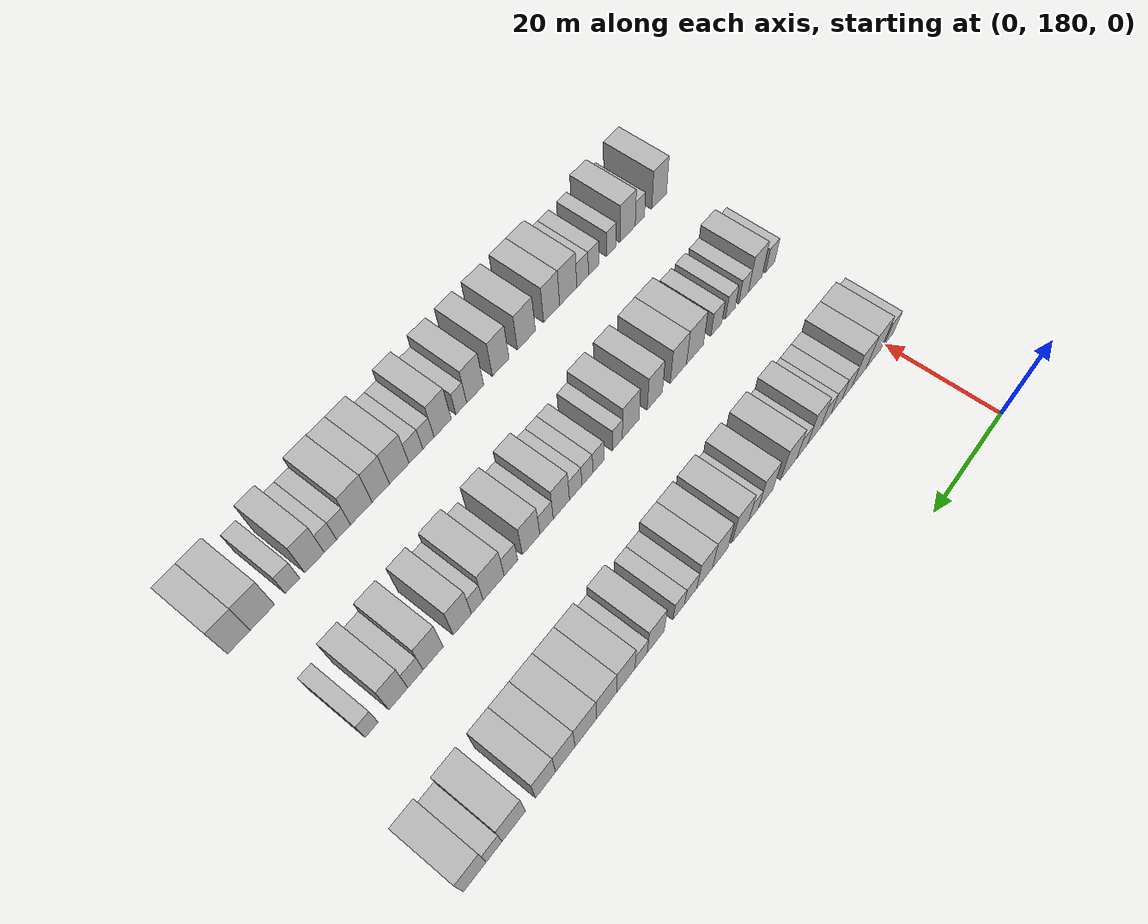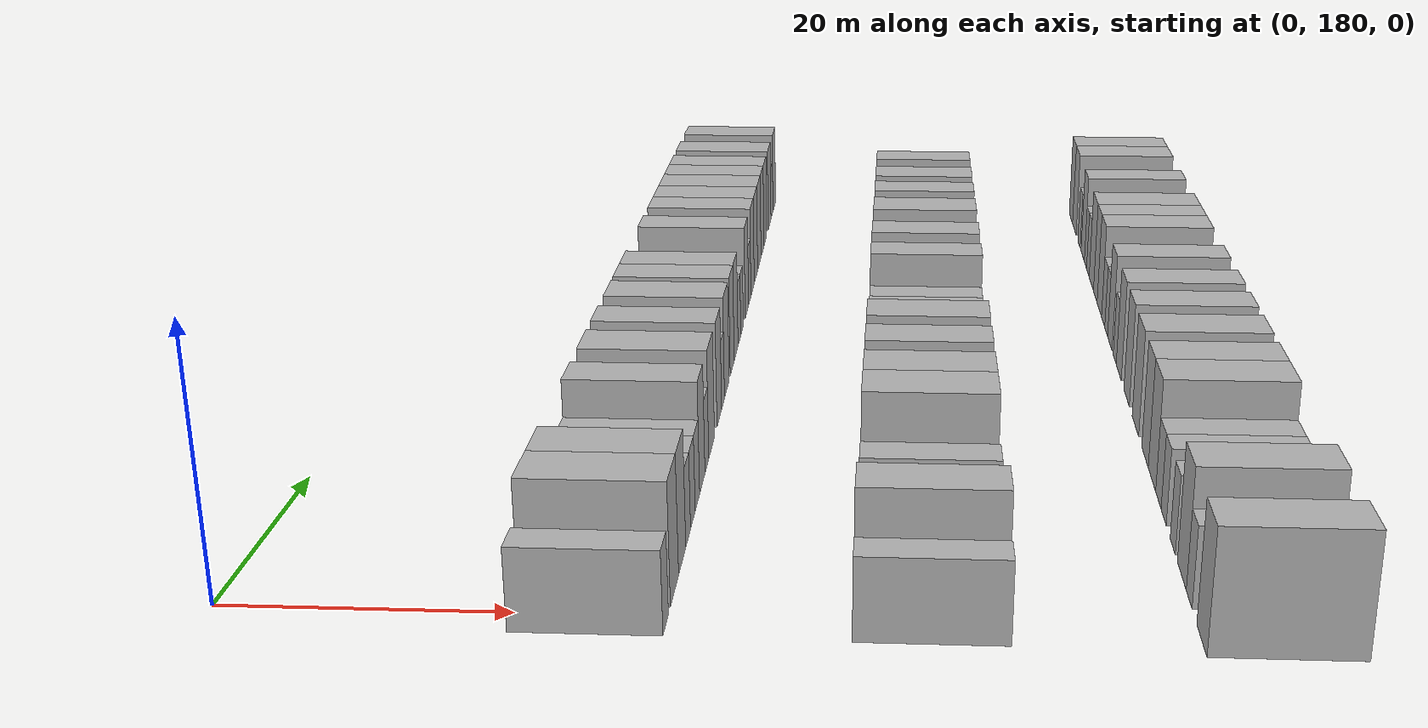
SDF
<sdf version="1.6">
 <world name="default">
  <model name="building_132">
   <static>1</static>
   <pose>25.0000 178.8875 0 0.000000 0.000000 0.000000</pose>
   <link name="link">
    <pose>0 0 3.00 0 0 0</pose>
    <collision name="collision"><geometry><box><size>10.0000 2.7104 6.0000</size></box></geometry></collision>
    <visual name="visual">
     <cast_shadows>0</cast_shadows>
     <geometry><box><size>10.0000 2.7104 6.0000</size></box></geometry>
     <material>
      <script>
       <uri>model://HANNAS_wall/materials/scripts</uri>
       <uri>model://HANNAS_wall/materials/textures</uri>
       <name>vrc/HANNAS_wall</name>
      </script>
     </material>
    </visual>
   </link>
  </model>
  <model name="building_133">
   <static>1</static>
   <pose>25.0000 183.4317 0 0.000000 0.000000 0.000000</pose>
   <link name="link">
    <pose>0 0 4.50 0 0 0</pose>
    <collision name="collision"><geometry><box><size>10.0000 4.3781 9.0000</size></box></geometry></collision>
    <visual name="visual">
     <cast_shadows>0</cast_shadows>
     <geometry><box><size>10.0000 4.3781 9.0000</size></box></geometry>
     <material>
      <script>
       <uri>model://HANNAS_wall/materials/scripts</uri>
       <uri>model://HANNAS_wall/materials/textures</uri>
       <name>vrc/HANNAS_wall</name>
      </script>
     </material>
    </visual>
   </link>
  </model>
  <model name="building_134">
   <static>1</static>
   <pose>25.0000 187.6681 0 0.000000 0.000000 0.000000</pose>
   <link name="link">
    <pose>0 0 4.50 0 0 0</pose>
    <collision name="collision"><geometry><box><size>10.0000 4.0947 9.0000</size></box></geometry></collision>
    <visual name="visual">
     <cast_shadows>0</cast_shadows>
     <geometry><box><size>10.0000 4.0947 9.0000</size></box></geometry>
     <material>
      <script>
       <uri>model://HANNAS_wall/materials/scripts</uri>
       <uri>model://HANNAS_wall/materials/textures</uri>
       <name>vrc/HANNAS_wall</name>
      </script>
     </material>
    </visual>
   </link>
  </model>
  <model name="building_135">
   <static>1</static>
   <pose>25.0000 191.1434 0 0.000000 0.000000 0.000000</pose>
   <link name="link">
    <pose>0 0 3.00 0 0 0</pose>
    <collision name="collision"><geometry><box><size>10.0000 2.8558 6.0000</size></box></geometry></collision>
    <visual name="visual">
     <cast_shadows>0</cast_shadows>
     <geometry><box><size>10.0000 2.8558 6.0000</size></box></geometry>
     <material>
      <script>
       <uri>model://HANNAS_wall/materials/scripts</uri>
       <uri>model://HANNAS_wall/materials/textures</uri>
       <name>vrc/HANNAS_wall</name>
      </script>
     </material>
    </visual>
   </link>
  </model>
  <model name="building_136">
   <static>1</static>
   <pose>25.0000 194.0284 0 0.000000 0.000000 0.000000</pose>
   <link name="link">
    <pose>0 0 3.00 0 0 0</pose>
    <collision name="collision"><geometry><box><size>10.0000 2.9141 6.0000</size></box></geometry></collision>
    <visual name="visual">
     <cast_shadows>0</cast_shadows>
     <geometry><box><size>10.0000 2.9141 6.0000</size></box></geometry>
     <material>
      <script>
       <uri>model://HANNAS_wall/materials/scripts</uri>
       <uri>model://HANNAS_wall/materials/textures</uri>
       <name>vrc/HANNAS_wall</name>
      </script>
     </material>
    </visual>
   </link>
  </model>
  <model name="building_137">
   <static>1</static>
   <pose>25.0000 196.9441 0 0.000000 0.000000 0.000000</pose>
   <link name="link">
    <pose>0 0 3.00 0 0 0</pose>
    <collision name="collision"><geometry><box><size>10.0000 2.9173 6.0000</size></box></geometry></collision>
    <visual name="visual">
     <cast_shadows>0</cast_shadows>
     <geometry><box><size>10.0000 2.9173 6.0000</size></box></geometry>
     <material>
      <script>
       <uri>model://HANNAS_wall/materials/scripts</uri>
       <uri>model://HANNAS_wall/materials/textures</uri>
       <name>vrc/HANNAS_wall</name>
      </script>
     </material>
    </visual>
   </link>
  </model>
  <model name="building_138">
   <static>1</static>
   <pose>25.0000 200.2274 0 0.000000 0.000000 0.000000</pose>
   <link name="link">
    <pose>0 0 4.50 0 0 0</pose>
    <collision name="collision"><geometry><box><size>10.0000 3.6493 9.0000</size></box></geometry></collision>
    <visual name="visual">
     <cast_shadows>0</cast_shadows>
     <geometry><box><size>10.0000 3.6493 9.0000</size></box></geometry>
     <material>
      <script>
       <uri>model://HANNAS_wall/materials/scripts</uri>
       <uri>model://HANNAS_wall/materials/textures</uri>
       <name>vrc/HANNAS_wall</name>
      </script>
     </material>
    </visual>
   </link>
  </model>
  <model name="building_139">
   <static>1</static>
   <pose>25.0000 203.4334 0 0.000000 0.000000 0.000000</pose>
   <link name="link">
    <pose>0 0 3.00 0 0 0</pose>
    <collision name="collision"><geometry><box><size>10.0000 2.7627 6.0000</size></box></geometry></collision>
    <visual name="visual">
     <cast_shadows>0</cast_shadows>
     <geometry><box><size>10.0000 2.7627 6.0000</size></box></geometry>
     <material>
      <script>
       <uri>model://HANNAS_wall/materials/scripts</uri>
       <uri>model://HANNAS_wall/materials/textures</uri>
       <name>vrc/HANNAS_wall</name>
      </script>
     </material>
    </visual>
   </link>
  </model>
  <model name="building_140">
   <static>1</static>
   <pose>25.0000 206.9406 0 0.000000 0.000000 0.000000</pose>
   <link name="link">
    <pose>0 0 4.50 0 0 0</pose>
    <collision name="collision"><geometry><box><size>10.0000 4.2517 9.0000</size></box></geometry></collision>
    <visual name="visual">
     <cast_shadows>0</cast_shadows>
     <geometry><box><size>10.0000 4.2517 9.0000</size></box></geometry>
     <material>
      <script>
       <uri>model://HANNAS_wall/materials/scripts</uri>
       <uri>model://HANNAS_wall/materials/textures</uri>
       <name>vrc/HANNAS_wall</name>
      </script>
     </material>
    </visual>
   </link>
  </model>
  <model name="building_141">
   <static>1</static>
   <pose>25.0000 212.9448 0 0.000000 0.000000 0.000000</pose>
   <link name="link">
    <pose>0 0 4.50 0 0 0</pose>
    <collision name="collision"><geometry><box><size>10.0000 3.7566 9.0000</size></box></geometry></collision>
    <visual name="visual">
     <cast_shadows>0</cast_shadows>
     <geometry><box><size>10.0000 3.7566 9.0000</size></box></geometry>
     <material>
      <script>
       <uri>model://HANNAS_wall/materials/scripts</uri>
       <uri>model://HANNAS_wall/materials/textures</uri>
       <name>vrc/HANNAS_wall</name>
      </script>
     </material>
    </visual>
   </link>
  </model>
  <model name="building_142">
   <static>1</static>
   <pose>25.0000 216.0454 0 0.000000 0.000000 0.000000</pose>
   <link name="link">
    <pose>0 0 3.00 0 0 0</pose>
    <collision name="collision"><geometry><box><size>10.0000 2.4447 6.0000</size></box></geometry></collision>
    <visual name="visual">
     <cast_shadows>0</cast_shadows>
     <geometry><box><size>10.0000 2.4447 6.0000</size></box></geometry>
     <material>
      <script>
       <uri>model://HANNAS_wall/materials/scripts</uri>
       <uri>model://HANNAS_wall/materials/textures</uri>
       <name>vrc/HANNAS_wall</name>
      </script>
     </material>
    </visual>
   </link>
  </model>
  <model name="building_143">
   <static>1</static>
   <pose>25.0000 219.3260 0 0.000000 0.000000 0.000000</pose>
   <link name="link">
    <pose>0 0 4.50 0 0 0</pose>
    <collision name="collision"><geometry><box><size>10.0000 4.1165 9.0000</size></box></geometry></collision>
    <visual name="visual">
     <cast_shadows>0</cast_shadows>
     <geometry><box><size>10.0000 4.1165 9.0000</size></box></geometry>
     <material>
      <script>
       <uri>model://HANNAS_wall/materials/scripts</uri>
       <uri>model://HANNAS_wall/materials/textures</uri>
       <name>vrc/HANNAS_wall</name>
      </script>
     </material>
    </visual>
   </link>
  </model>
  <model name="building_144">
   <static>1</static>
   <pose>25.0000 224.2451 0 0.000000 0.000000 0.000000</pose>
   <link name="link">
    <pose>0 0 4.50 0 0 0</pose>
    <collision name="collision"><geometry><box><size>10.0000 3.7218 9.0000</size></box></geometry></collision>
    <visual name="visual">
     <cast_shadows>0</cast_shadows>
     <geometry><box><size>10.0000 3.7218 9.0000</size></box></geometry>
     <material>
      <script>
       <uri>model://HANNAS_wall/materials/scripts</uri>
       <uri>model://HANNAS_wall/materials/textures</uri>
       <name>vrc/HANNAS_wall</name>
      </script>
     </material>
    </visual>
   </link>
  </model>
  <model name="building_145">
   <static>1</static>
   <pose>25.0000 227.9813 0 0.000000 0.000000 0.000000</pose>
   <link name="link">
    <pose>0 0 4.50 0 0 0</pose>
    <collision name="collision"><geometry><box><size>10.0000 3.7504 9.0000</size></box></geometry></collision>
    <visual name="visual">
     <cast_shadows>0</cast_shadows>
     <geometry><box><size>10.0000 3.7504 9.0000</size></box></geometry>
     <material>
      <script>
       <uri>model://HANNAS_wall/materials/scripts</uri>
       <uri>model://HANNAS_wall/materials/textures</uri>
       <name>vrc/HANNAS_wall</name>
      </script>
     </material>
    </visual>
   </link>
  </model>
  <model name="building_146">
   <static>1</static>
   <pose>25.0000 231.2785 0 0.000000 0.000000 0.000000</pose>
   <link name="link">
    <pose>0 0 3.00 0 0 0</pose>
    <collision name="collision"><geometry><box><size>10.0000 2.8440 6.0000</size></box></geometry></collision>
    <visual name="visual">
     <cast_shadows>0</cast_shadows>
     <geometry><box><size>10.0000 2.8440 6.0000</size></box></geometry>
     <material>
      <script>
       <uri>model://HANNAS_wall/materials/scripts</uri>
       <uri>model://HANNAS_wall/materials/textures</uri>
       <name>vrc/HANNAS_wall</name>
      </script>
     </material>
    </visual>
   </link>
  </model>
  <model name="building_147">
   <static>1</static>
   <pose>25.0000 234.0198 0 0.000000 0.000000 0.000000</pose>
   <link name="link">
    <pose>0 0 3.00 0 0 0</pose>
    <collision name="collision"><geometry><box><size>10.0000 2.6386 6.0000</size></box></geometry></collision>
    <visual name="visual">
     <cast_shadows>0</cast_shadows>
     <geometry><box><size>10.0000 2.6386 6.0000</size></box></geometry>
     <material>
      <script>
       <uri>model://HANNAS_wall/materials/scripts</uri>
       <uri>model://HANNAS_wall/materials/textures</uri>
       <name>vrc/HANNAS_wall</name>
      </script>
     </material>
    </visual>
   </link>
  </model>
  <model name="building_148">
   <static>1</static>
   <pose>25.0000 239.2450 0 0.000000 0.000000 0.000000</pose>
   <link name="link">
    <pose>0 0 4.50 0 0 0</pose>
    <collision name="collision"><geometry><box><size>10.0000 3.8118 9.0000</size></box></geometry></collision>
    <visual name="visual">
     <cast_shadows>0</cast_shadows>
     <geometry><box><size>10.0000 3.8118 9.0000</size></box></geometry>
     <material>
      <script>
       <uri>model://HANNAS_wall/materials/scripts</uri>
       <uri>model://HANNAS_wall/materials/textures</uri>
       <name>vrc/HANNAS_wall</name>
      </script>
     </material>
    </visual>
   </link>
  </model>
  <model name="building_149">
   <static>1</static>
   <pose>25.0000 242.5101 0 0.000000 0.000000 0.000000</pose>
   <link name="link">
    <pose>0 0 3.00 0 0 0</pose>
    <collision name="collision"><geometry><box><size>10.0000 2.7183 6.0000</size></box></geometry></collision>
    <visual name="visual">
     <cast_shadows>0</cast_shadows>
     <geometry><box><size>10.0000 2.7183 6.0000</size></box></geometry>
     <material>
      <script>
       <uri>model://HANNAS_wall/materials/scripts</uri>
       <uri>model://HANNAS_wall/materials/textures</uri>
       <name>vrc/HANNAS_wall</name>
      </script>
     </material>
    </visual>
   </link>
  </model>
  <model name="building_150">
   <static>1</static>
   <pose>25.0000 245.8406 0 0.000000 0.000000 0.000000</pose>
   <link name="link">
    <pose>0 0 4.50 0 0 0</pose>
    <collision name="collision"><geometry><box><size>10.0000 3.9428 9.0000</size></box></geometry></collision>
    <visual name="visual">
     <cast_shadows>0</cast_shadows>
     <geometry><box><size>10.0000 3.9428 9.0000</size></box></geometry>
     <material>
      <script>
       <uri>model://HANNAS_wall/materials/scripts</uri>
       <uri>model://HANNAS_wall/materials/textures</uri>
       <name>vrc/HANNAS_wall</name>
      </script>
     </material>
    </visual>
   </link>
  </model>
  <model name="building_151">
   <static>1</static>
   <pose>25.0000 249.9396 0 0.000000 0.000000 0.000000</pose>
   <link name="link">
    <pose>0 0 4.50 0 0 0</pose>
    <collision name="collision"><geometry><box><size>10.0000 4.2550 9.0000</size></box></geometry></collision>
    <visual name="visual">
     <cast_shadows>0</cast_shadows>
     <geometry><box><size>10.0000 4.2550 9.0000</size></box></geometry>
     <material>
      <script>
       <uri>model://HANNAS_wall/materials/scripts</uri>
       <uri>model://HANNAS_wall/materials/textures</uri>
       <name>vrc/HANNAS_wall</name>
      </script>
     </material>
    </visual>
   </link>
  </model>
  <model name="building_152">
   <static>1</static>
   <pose>25.0000 254.2972 0 0.000000 0.000000 0.000000</pose>
   <link name="link">
    <pose>0 0 4.50 0 0 0</pose>
    <collision name="collision"><geometry><box><size>10.0000 4.4603 9.0000</size></box></geometry></collision>
    <visual name="visual">
     <cast_shadows>0</cast_shadows>
     <geometry><box><size>10.0000 4.4603 9.0000</size></box></geometry>
     <material>
      <script>
       <uri>model://HANNAS_wall/materials/scripts</uri>
       <uri>model://HANNAS_wall/materials/textures</uri>
       <name>vrc/HANNAS_wall</name>
      </script>
     </material>
    </visual>
   </link>
  </model>
  <model name="building_153">
   <static>1</static>
   <pose>25.0000 258.5037 0 0.000000 0.000000 0.000000</pose>
   <link name="link">
    <pose>0 0 4.50 0 0 0</pose>
    <collision name="collision"><geometry><box><size>10.0000 3.9527 9.0000</size></box></geometry></collision>
    <visual name="visual">
     <cast_shadows>0</cast_shadows>
     <geometry><box><size>10.0000 3.9527 9.0000</size></box></geometry>
     <material>
      <script>
       <uri>model://HANNAS_wall/materials/scripts</uri>
       <uri>model://HANNAS_wall/materials/textures</uri>
       <name>vrc/HANNAS_wall</name>
      </script>
     </material>
    </visual>
   </link>
  </model>
  <model name="building_154">
   <static>1</static>
   <pose>25.0000 262.4560 0 0.000000 0.000000 0.000000</pose>
   <link name="link">
    <pose>0 0 4.50 0 0 0</pose>
    <collision name="collision"><geometry><box><size>10.0000 3.9519 9.0000</size></box></geometry></collision>
    <visual name="visual">
     <cast_shadows>0</cast_shadows>
     <geometry><box><size>10.0000 3.9519 9.0000</size></box></geometry>
     <material>
      <script>
       <uri>model://HANNAS_wall/materials/scripts</uri>
       <uri>model://HANNAS_wall/materials/textures</uri>
       <name>vrc/HANNAS_wall</name>
      </script>
     </material>
    </visual>
   </link>
  </model>
  <model name="building_155">
   <static>1</static>
   <pose>25.0000 268.6586 0 0.000000 0.000000 0.000000</pose>
   <link name="link">
    <pose>0 0 4.50 0 0 0</pose>
    <collision name="collision"><geometry><box><size>10.0000 4.4533 9.0000</size></box></geometry></collision>
    <visual name="visual">
     <cast_shadows>0</cast_shadows>
     <geometry><box><size>10.0000 4.4533 9.0000</size></box></geometry>
     <material>
      <script>
       <uri>model://HANNAS_wall/materials/scripts</uri>
       <uri>model://HANNAS_wall/materials/textures</uri>
       <name>vrc/HANNAS_wall</name>
      </script>
     </material>
    </visual>
   </link>
  </model>
  <model name="building_156">
   <static>1</static>
   <pose>25.0000 272.3724 0 0.000000 0.000000 0.000000</pose>
   <link name="link">
    <pose>0 0 3.00 0 0 0</pose>
    <collision name="collision"><geometry><box><size>10.0000 2.9742 6.0000</size></box></geometry></collision>
    <visual name="visual">
     <cast_shadows>0</cast_shadows>
     <geometry><box><size>10.0000 2.9742 6.0000</size></box></geometry>
     <material>
      <script>
       <uri>model://HANNAS_wall/materials/scripts</uri>
       <uri>model://HANNAS_wall/materials/textures</uri>
       <name>vrc/HANNAS_wall</name>
      </script>
     </material>
    </visual>
   </link>
  </model>
  <model name="building_157">
   <static>1</static>
   <pose>25.0000 275.9692 0 0.000000 0.000000 0.000000</pose>
   <link name="link">
    <pose>0 0 4.50 0 0 0</pose>
    <collision name="collision"><geometry><box><size>10.0000 4.2195 9.0000</size></box></geometry></collision>
    <visual name="visual">
     <cast_shadows>0</cast_shadows>
     <geometry><box><size>10.0000 4.2195 9.0000</size></box></geometry>
     <material>
      <script>
       <uri>model://HANNAS_wall/materials/scripts</uri>
       <uri>model://HANNAS_wall/materials/textures</uri>
       <name>vrc/HANNAS_wall</name>
      </script>
     </material>
    </visual>
   </link>
  </model>
  <model name="building_324">
   <static>1</static>
   <pose>47.0000 178.6921 0 0.000000 0.000000 0.000000</pose>
   <link name="link">
    <pose>0 0 3.00 0 0 0</pose>
    <collision name="collision"><geometry><box><size>10.0000 2.6693 6.0000</size></box></geometry></collision>
    <visual name="visual">
     <cast_shadows>0</cast_shadows>
     <geometry><box><size>10.0000 2.6693 6.0000</size></box></geometry>
     <material>
      <script>
       <uri>model://HANNAS_wall/materials/scripts</uri>
       <uri>model://HANNAS_wall/materials/textures</uri>
       <name>vrc/HANNAS_wall</name>
      </script>
     </material>
    </visual>
   </link>
  </model>
  <model name="building_325">
   <static>1</static>
   <pose>47.0000 182.9508 0 0.000000 0.000000 0.000000</pose>
   <link name="link">
    <pose>0 0 4.50 0 0 0</pose>
    <collision name="collision"><geometry><box><size>10.0000 3.8480 9.0000</size></box></geometry></collision>
    <visual name="visual">
     <cast_shadows>0</cast_shadows>
     <geometry><box><size>10.0000 3.8480 9.0000</size></box></geometry>
     <material>
      <script>
       <uri>model://HANNAS_wall/materials/scripts</uri>
       <uri>model://HANNAS_wall/materials/textures</uri>
       <name>vrc/HANNAS_wall</name>
      </script>
     </material>
    </visual>
   </link>
  </model>
  <model name="building_326">
   <static>1</static>
   <pose>47.0000 186.2127 0 0.000000 0.000000 0.000000</pose>
   <link name="link">
    <pose>0 0 3.00 0 0 0</pose>
    <collision name="collision"><geometry><box><size>10.0000 2.6759 6.0000</size></box></geometry></collision>
    <visual name="visual">
     <cast_shadows>0</cast_shadows>
     <geometry><box><size>10.0000 2.6759 6.0000</size></box></geometry>
     <material>
      <script>
       <uri>model://HANNAS_wall/materials/scripts</uri>
       <uri>model://HANNAS_wall/materials/textures</uri>
       <name>vrc/HANNAS_wall</name>
      </script>
     </material>
    </visual>
   </link>
  </model>
  <model name="building_327">
   <static>1</static>
   <pose>47.0000 189.8908 0 0.000000 0.000000 0.000000</pose>
   <link name="link">
    <pose>0 0 3.00 0 0 0</pose>
    <collision name="collision"><geometry><box><size>10.0000 2.6802 6.0000</size></box></geometry></collision>
    <visual name="visual">
     <cast_shadows>0</cast_shadows>
     <geometry><box><size>10.0000 2.6802 6.0000</size></box></geometry>
     <material>
      <script>
       <uri>model://HANNAS_wall/materials/scripts</uri>
       <uri>model://HANNAS_wall/materials/textures</uri>
       <name>vrc/HANNAS_wall</name>
      </script>
     </material>
    </visual>
   </link>
  </model>
  <model name="building_328">
   <static>1</static>
   <pose>47.0000 193.6900 0 0.000000 0.000000 0.000000</pose>
   <link name="link">
    <pose>0 0 3.00 0 0 0</pose>
    <collision name="collision"><geometry><box><size>10.0000 2.9183 6.0000</size></box></geometry></collision>
    <visual name="visual">
     <cast_shadows>0</cast_shadows>
     <geometry><box><size>10.0000 2.9183 6.0000</size></box></geometry>
     <material>
      <script>
       <uri>model://HANNAS_wall/materials/scripts</uri>
       <uri>model://HANNAS_wall/materials/textures</uri>
       <name>vrc/HANNAS_wall</name>
      </script>
     </material>
    </visual>
   </link>
  </model>
  <model name="building_329">
   <static>1</static>
   <pose>47.0000 199.3684 0 0.000000 0.000000 0.000000</pose>
   <link name="link">
    <pose>0 0 4.50 0 0 0</pose>
    <collision name="collision"><geometry><box><size>10.0000 4.4385 9.0000</size></box></geometry></collision>
    <visual name="visual">
     <cast_shadows>0</cast_shadows>
     <geometry><box><size>10.0000 4.4385 9.0000</size></box></geometry>
     <material>
      <script>
       <uri>model://HANNAS_wall/materials/scripts</uri>
       <uri>model://HANNAS_wall/materials/textures</uri>
       <name>vrc/HANNAS_wall</name>
      </script>
     </material>
    </visual>
   </link>
  </model>
  <model name="building_330">
   <static>1</static>
   <pose>47.0000 203.6775 0 0.000000 0.000000 0.000000</pose>
   <link name="link">
    <pose>0 0 4.50 0 0 0</pose>
    <collision name="collision"><geometry><box><size>10.0000 4.1798 9.0000</size></box></geometry></collision>
    <visual name="visual">
     <cast_shadows>0</cast_shadows>
     <geometry><box><size>10.0000 4.1798 9.0000</size></box></geometry>
     <material>
      <script>
       <uri>model://HANNAS_wall/materials/scripts</uri>
       <uri>model://HANNAS_wall/materials/textures</uri>
       <name>vrc/HANNAS_wall</name>
      </script>
     </material>
    </visual>
   </link>
  </model>
  <model name="building_331">
   <static>1</static>
   <pose>47.0000 209.6791 0 0.000000 0.000000 0.000000</pose>
   <link name="link">
    <pose>0 0 4.50 0 0 0</pose>
    <collision name="collision"><geometry><box><size>10.0000 3.8232 9.0000</size></box></geometry></collision>
    <visual name="visual">
     <cast_shadows>0</cast_shadows>
     <geometry><box><size>10.0000 3.8232 9.0000</size></box></geometry>
     <material>
      <script>
       <uri>model://HANNAS_wall/materials/scripts</uri>
       <uri>model://HANNAS_wall/materials/textures</uri>
       <name>vrc/HANNAS_wall</name>
      </script>
     </material>
    </visual>
   </link>
  </model>
  <model name="building_332">
   <static>1</static>
   <pose>47.0000 215.6368 0 0.000000 0.000000 0.000000</pose>
   <link name="link">
    <pose>0 0 4.50 0 0 0</pose>
    <collision name="collision"><geometry><box><size>10.0000 4.0922 9.0000</size></box></geometry></collision>
    <visual name="visual">
     <cast_shadows>0</cast_shadows>
     <geometry><box><size>10.0000 4.0922 9.0000</size></box></geometry>
     <material>
      <script>
       <uri>model://HANNAS_wall/materials/scripts</uri>
       <uri>model://HANNAS_wall/materials/textures</uri>
       <name>vrc/HANNAS_wall</name>
      </script>
     </material>
    </visual>
   </link>
  </model>
  <model name="building_333">
   <static>1</static>
   <pose>47.0000 218.8910 0 0.000000 0.000000 0.000000</pose>
   <link name="link">
    <pose>0 0 3.00 0 0 0</pose>
    <collision name="collision"><geometry><box><size>10.0000 2.4162 6.0000</size></box></geometry></collision>
    <visual name="visual">
     <cast_shadows>0</cast_shadows>
     <geometry><box><size>10.0000 2.4162 6.0000</size></box></geometry>
     <material>
      <script>
       <uri>model://HANNAS_wall/materials/scripts</uri>
       <uri>model://HANNAS_wall/materials/textures</uri>
       <name>vrc/HANNAS_wall</name>
      </script>
     </material>
    </visual>
   </link>
  </model>
  <model name="building_334">
   <static>1</static>
   <pose>47.0000 223.3884 0 0.000000 0.000000 0.000000</pose>
   <link name="link">
    <pose>0 0 3.00 0 0 0</pose>
    <collision name="collision"><geometry><box><size>10.0000 2.5786 6.0000</size></box></geometry></collision>
    <visual name="visual">
     <cast_shadows>0</cast_shadows>
     <geometry><box><size>10.0000 2.5786 6.0000</size></box></geometry>
     <material>
      <script>
       <uri>model://HANNAS_wall/materials/scripts</uri>
       <uri>model://HANNAS_wall/materials/textures</uri>
       <name>vrc/HANNAS_wall</name>
      </script>
     </material>
    </visual>
   </link>
  </model>
  <model name="building_335">
   <static>1</static>
   <pose>47.0000 225.9514 0 0.000000 0.000000 0.000000</pose>
   <link name="link">
    <pose>0 0 3.00 0 0 0</pose>
    <collision name="collision"><geometry><box><size>10.0000 2.5474 6.0000</size></box></geometry></collision>
    <visual name="visual">
     <cast_shadows>0</cast_shadows>
     <geometry><box><size>10.0000 2.5474 6.0000</size></box></geometry>
     <material>
      <script>
       <uri>model://HANNAS_wall/materials/scripts</uri>
       <uri>model://HANNAS_wall/materials/textures</uri>
       <name>vrc/HANNAS_wall</name>
      </script>
     </material>
    </visual>
   </link>
  </model>
  <model name="building_336">
   <static>1</static>
   <pose>47.0000 228.6467 0 0.000000 0.000000 0.000000</pose>
   <link name="link">
    <pose>0 0 3.00 0 0 0</pose>
    <collision name="collision"><geometry><box><size>10.0000 2.8433 6.0000</size></box></geometry></collision>
    <visual name="visual">
     <cast_shadows>0</cast_shadows>
     <geometry><box><size>10.0000 2.8433 6.0000</size></box></geometry>
     <material>
      <script>
       <uri>model://HANNAS_wall/materials/scripts</uri>
       <uri>model://HANNAS_wall/materials/textures</uri>
       <name>vrc/HANNAS_wall</name>
      </script>
     </material>
    </visual>
   </link>
  </model>
  <model name="building_337">
   <static>1</static>
   <pose>47.0000 231.8906 0 0.000000 0.000000 0.000000</pose>
   <link name="link">
    <pose>0 0 4.50 0 0 0</pose>
    <collision name="collision"><geometry><box><size>10.0000 3.6445 9.0000</size></box></geometry></collision>
    <visual name="visual">
     <cast_shadows>0</cast_shadows>
     <geometry><box><size>10.0000 3.6445 9.0000</size></box></geometry>
     <material>
      <script>
       <uri>model://HANNAS_wall/materials/scripts</uri>
       <uri>model://HANNAS_wall/materials/textures</uri>
       <name>vrc/HANNAS_wall</name>
      </script>
     </material>
    </visual>
   </link>
  </model>
  <model name="building_338">
   <static>1</static>
   <pose>47.0000 235.2000 0 0.000000 0.000000 0.000000</pose>
   <link name="link">
    <pose>0 0 3.00 0 0 0</pose>
    <collision name="collision"><geometry><box><size>10.0000 2.9742 6.0000</size></box></geometry></collision>
    <visual name="visual">
     <cast_shadows>0</cast_shadows>
     <geometry><box><size>10.0000 2.9742 6.0000</size></box></geometry>
     <material>
      <script>
       <uri>model://HANNAS_wall/materials/scripts</uri>
       <uri>model://HANNAS_wall/materials/textures</uri>
       <name>vrc/HANNAS_wall</name>
      </script>
     </material>
    </visual>
   </link>
  </model>
  <model name="building_339">
   <static>1</static>
   <pose>47.0000 238.6045 0 0.000000 0.000000 0.000000</pose>
   <link name="link">
    <pose>0 0 4.50 0 0 0</pose>
    <collision name="collision"><geometry><box><size>10.0000 3.8350 9.0000</size></box></geometry></collision>
    <visual name="visual">
     <cast_shadows>0</cast_shadows>
     <geometry><box><size>10.0000 3.8350 9.0000</size></box></geometry>
     <material>
      <script>
       <uri>model://HANNAS_wall/materials/scripts</uri>
       <uri>model://HANNAS_wall/materials/textures</uri>
       <name>vrc/HANNAS_wall</name>
      </script>
     </material>
    </visual>
   </link>
  </model>
  <model name="building_340">
   <static>1</static>
   <pose>47.0000 242.9739 0 0.000000 0.000000 0.000000</pose>
   <link name="link">
    <pose>0 0 3.00 0 0 0</pose>
    <collision name="collision"><geometry><box><size>10.0000 2.9038 6.0000</size></box></geometry></collision>
    <visual name="visual">
     <cast_shadows>0</cast_shadows>
     <geometry><box><size>10.0000 2.9038 6.0000</size></box></geometry>
     <material>
      <script>
       <uri>model://HANNAS_wall/materials/scripts</uri>
       <uri>model://HANNAS_wall/materials/textures</uri>
       <name>vrc/HANNAS_wall</name>
      </script>
     </material>
    </visual>
   </link>
  </model>
  <model name="building_341">
   <static>1</static>
   <pose>47.0000 246.6297 0 0.000000 0.000000 0.000000</pose>
   <link name="link">
    <pose>0 0 4.50 0 0 0</pose>
    <collision name="collision"><geometry><box><size>10.0000 4.4078 9.0000</size></box></geometry></collision>
    <visual name="visual">
     <cast_shadows>0</cast_shadows>
     <geometry><box><size>10.0000 4.4078 9.0000</size></box></geometry>
     <material>
      <script>
       <uri>model://HANNAS_wall/materials/scripts</uri>
       <uri>model://HANNAS_wall/materials/textures</uri>
       <name>vrc/HANNAS_wall</name>
      </script>
     </material>
    </visual>
   </link>
  </model>
  <model name="building_342">
   <static>1</static>
   <pose>47.0000 250.0506 0 0.000000 0.000000 0.000000</pose>
   <link name="link">
    <pose>0 0 3.00 0 0 0</pose>
    <collision name="collision"><geometry><box><size>10.0000 2.4340 6.0000</size></box></geometry></collision>
    <visual name="visual">
     <cast_shadows>0</cast_shadows>
     <geometry><box><size>10.0000 2.4340 6.0000</size></box></geometry>
     <material>
      <script>
       <uri>model://HANNAS_wall/materials/scripts</uri>
       <uri>model://HANNAS_wall/materials/textures</uri>
       <name>vrc/HANNAS_wall</name>
      </script>
     </material>
    </visual>
   </link>
  </model>
  <model name="building_343">
   <static>1</static>
   <pose>47.0000 253.1207 0 0.000000 0.000000 0.000000</pose>
   <link name="link">
    <pose>0 0 4.50 0 0 0</pose>
    <collision name="collision"><geometry><box><size>10.0000 3.7061 9.0000</size></box></geometry></collision>
    <visual name="visual">
     <cast_shadows>0</cast_shadows>
     <geometry><box><size>10.0000 3.7061 9.0000</size></box></geometry>
     <material>
      <script>
       <uri>model://HANNAS_wall/materials/scripts</uri>
       <uri>model://HANNAS_wall/materials/textures</uri>
       <name>vrc/HANNAS_wall</name>
      </script>
     </material>
    </visual>
   </link>
  </model>
  <model name="building_344">
   <static>1</static>
   <pose>47.0000 258.9680 0 0.000000 0.000000 0.000000</pose>
   <link name="link">
    <pose>0 0 4.50 0 0 0</pose>
    <collision name="collision"><geometry><box><size>10.0000 3.9885 9.0000</size></box></geometry></collision>
    <visual name="visual">
     <cast_shadows>0</cast_shadows>
     <geometry><box><size>10.0000 3.9885 9.0000</size></box></geometry>
     <material>
      <script>
       <uri>model://HANNAS_wall/materials/scripts</uri>
       <uri>model://HANNAS_wall/materials/textures</uri>
       <name>vrc/HANNAS_wall</name>
      </script>
     </material>
    </visual>
   </link>
  </model>
  <model name="building_345">
   <static>1</static>
   <pose>47.0000 262.4523 0 0.000000 0.000000 0.000000</pose>
   <link name="link">
    <pose>0 0 3.00 0 0 0</pose>
    <collision name="collision"><geometry><box><size>10.0000 2.9801 6.0000</size></box></geometry></collision>
    <visual name="visual">
     <cast_shadows>0</cast_shadows>
     <geometry><box><size>10.0000 2.9801 6.0000</size></box></geometry>
     <material>
      <script>
       <uri>model://HANNAS_wall/materials/scripts</uri>
       <uri>model://HANNAS_wall/materials/textures</uri>
       <name>vrc/HANNAS_wall</name>
      </script>
     </material>
    </visual>
   </link>
  </model>
  <model name="building_346">
   <static>1</static>
   <pose>47.0000 265.7426 0 0.000000 0.000000 0.000000</pose>
   <link name="link">
    <pose>0 0 4.50 0 0 0</pose>
    <collision name="collision"><geometry><box><size>10.0000 3.6006 9.0000</size></box></geometry></collision>
    <visual name="visual">
     <cast_shadows>0</cast_shadows>
     <geometry><box><size>10.0000 3.6006 9.0000</size></box></geometry>
     <material>
      <script>
       <uri>model://HANNAS_wall/materials/scripts</uri>
       <uri>model://HANNAS_wall/materials/textures</uri>
       <name>vrc/HANNAS_wall</name>
      </script>
     </material>
    </visual>
   </link>
  </model>
  <model name="building_347">
   <static>1</static>
   <pose>47.0000 270.7739 0 0.000000 0.000000 0.000000</pose>
   <link name="link">
    <pose>0 0 3.00 0 0 0</pose>
    <collision name="collision"><geometry><box><size>10.0000 2.4620 6.0000</size></box></geometry></collision>
    <visual name="visual">
     <cast_shadows>0</cast_shadows>
     <geometry><box><size>10.0000 2.4620 6.0000</size></box></geometry>
     <material>
      <script>
       <uri>model://HANNAS_wall/materials/scripts</uri>
       <uri>model://HANNAS_wall/materials/textures</uri>
       <name>vrc/HANNAS_wall</name>
      </script>
     </material>
    </visual>
   </link>
  </model>
  <model name="building_515">
   <static>1</static>
   <pose>69.0000 178.6815 0 0.000000 0.000000 0.000000</pose>
   <link name="link">
    <pose>0 0 4.50 0 0 0</pose>
    <collision name="collision"><geometry><box><size>10.0000 4.1036 9.0000</size></box></geometry></collision>
    <visual name="visual">
     <cast_shadows>0</cast_shadows>
     <geometry><box><size>10.0000 4.1036 9.0000</size></box></geometry>
     <material>
      <script>
       <uri>model://HANNAS_wall/materials/scripts</uri>
       <uri>model://HANNAS_wall/materials/textures</uri>
       <name>vrc/HANNAS_wall</name>
      </script>
     </material>
    </visual>
   </link>
  </model>
  <model name="building_516">
   <static>1</static>
   <pose>69.0000 184.0021 0 0.000000 0.000000 0.000000</pose>
   <link name="link">
    <pose>0 0 3.00 0 0 0</pose>
    <collision name="collision"><geometry><box><size>10.0000 2.5376 6.0000</size></box></geometry></collision>
    <visual name="visual">
     <cast_shadows>0</cast_shadows>
     <geometry><box><size>10.0000 2.5376 6.0000</size></box></geometry>
     <material>
      <script>
       <uri>model://HANNAS_wall/materials/scripts</uri>
       <uri>model://HANNAS_wall/materials/textures</uri>
       <name>vrc/HANNAS_wall</name>
      </script>
     </material>
    </visual>
   </link>
  </model>
  <model name="building_517">
   <static>1</static>
   <pose>69.0000 187.3221 0 0.000000 0.000000 0.000000</pose>
   <link name="link">
    <pose>0 0 4.50 0 0 0</pose>
    <collision name="collision"><geometry><box><size>10.0000 4.1025 9.0000</size></box></geometry></collision>
    <visual name="visual">
     <cast_shadows>0</cast_shadows>
     <geometry><box><size>10.0000 4.1025 9.0000</size></box></geometry>
     <material>
      <script>
       <uri>model://HANNAS_wall/materials/scripts</uri>
       <uri>model://HANNAS_wall/materials/textures</uri>
       <name>vrc/HANNAS_wall</name>
      </script>
     </material>
    </visual>
   </link>
  </model>
  <model name="building_518">
   <static>1</static>
   <pose>69.0000 191.6410 0 0.000000 0.000000 0.000000</pose>
   <link name="link">
    <pose>0 0 3.00 0 0 0</pose>
    <collision name="collision"><geometry><box><size>10.0000 2.5352 6.0000</size></box></geometry></collision>
    <visual name="visual">
     <cast_shadows>0</cast_shadows>
     <geometry><box><size>10.0000 2.5352 6.0000</size></box></geometry>
     <material>
      <script>
       <uri>model://HANNAS_wall/materials/scripts</uri>
       <uri>model://HANNAS_wall/materials/textures</uri>
       <name>vrc/HANNAS_wall</name>
      </script>
     </material>
    </visual>
   </link>
  </model>
  <model name="building_519">
   <static>1</static>
   <pose>69.0000 196.2639 0 0.000000 0.000000 0.000000</pose>
   <link name="link">
    <pose>0 0 3.00 0 0 0</pose>
    <collision name="collision"><geometry><box><size>10.0000 2.7107 6.0000</size></box></geometry></collision>
    <visual name="visual">
     <cast_shadows>0</cast_shadows>
     <geometry><box><size>10.0000 2.7107 6.0000</size></box></geometry>
     <material>
      <script>
       <uri>model://HANNAS_wall/materials/scripts</uri>
       <uri>model://HANNAS_wall/materials/textures</uri>
       <name>vrc/HANNAS_wall</name>
      </script>
     </material>
    </visual>
   </link>
  </model>
  <model name="building_520">
   <static>1</static>
   <pose>69.0000 199.1174 0 0.000000 0.000000 0.000000</pose>
   <link name="link">
    <pose>0 0 3.00 0 0 0</pose>
    <collision name="collision"><geometry><box><size>10.0000 2.9963 6.0000</size></box></geometry></collision>
    <visual name="visual">
     <cast_shadows>0</cast_shadows>
     <geometry><box><size>10.0000 2.9963 6.0000</size></box></geometry>
     <material>
      <script>
       <uri>model://HANNAS_wall/materials/scripts</uri>
       <uri>model://HANNAS_wall/materials/textures</uri>
       <name>vrc/HANNAS_wall</name>
      </script>
     </material>
    </visual>
   </link>
  </model>
  <model name="building_521">
   <static>1</static>
   <pose>69.0000 202.7664 0 0.000000 0.000000 0.000000</pose>
   <link name="link">
    <pose>0 0 4.50 0 0 0</pose>
    <collision name="collision"><geometry><box><size>10.0000 4.3018 9.0000</size></box></geometry></collision>
    <visual name="visual">
     <cast_shadows>0</cast_shadows>
     <geometry><box><size>10.0000 4.3018 9.0000</size></box></geometry>
     <material>
      <script>
       <uri>model://HANNAS_wall/materials/scripts</uri>
       <uri>model://HANNAS_wall/materials/textures</uri>
       <name>vrc/HANNAS_wall</name>
      </script>
     </material>
    </visual>
   </link>
  </model>
  <model name="building_522">
   <static>1</static>
   <pose>69.0000 206.9079 0 0.000000 0.000000 0.000000</pose>
   <link name="link">
    <pose>0 0 4.50 0 0 0</pose>
    <collision name="collision"><geometry><box><size>10.0000 3.9813 9.0000</size></box></geometry></collision>
    <visual name="visual">
     <cast_shadows>0</cast_shadows>
     <geometry><box><size>10.0000 3.9813 9.0000</size></box></geometry>
     <material>
      <script>
       <uri>model://HANNAS_wall/materials/scripts</uri>
       <uri>model://HANNAS_wall/materials/textures</uri>
       <name>vrc/HANNAS_wall</name>
      </script>
     </material>
    </visual>
   </link>
  </model>
  <model name="building_523">
   <static>1</static>
   <pose>69.0000 213.0619 0 0.000000 0.000000 0.000000</pose>
   <link name="link">
    <pose>0 0 4.50 0 0 0</pose>
    <collision name="collision"><geometry><box><size>10.0000 4.3266 9.0000</size></box></geometry></collision>
    <visual name="visual">
     <cast_shadows>0</cast_shadows>
     <geometry><box><size>10.0000 4.3266 9.0000</size></box></geometry>
     <material>
      <script>
       <uri>model://HANNAS_wall/materials/scripts</uri>
       <uri>model://HANNAS_wall/materials/textures</uri>
       <name>vrc/HANNAS_wall</name>
      </script>
     </material>
    </visual>
   </link>
  </model>
  <model name="building_524">
   <static>1</static>
   <pose>69.0000 219.1783 0 0.000000 0.000000 0.000000</pose>
   <link name="link">
    <pose>0 0 4.50 0 0 0</pose>
    <collision name="collision"><geometry><box><size>10.0000 3.9063 9.0000</size></box></geometry></collision>
    <visual name="visual">
     <cast_shadows>0</cast_shadows>
     <geometry><box><size>10.0000 3.9063 9.0000</size></box></geometry>
     <material>
      <script>
       <uri>model://HANNAS_wall/materials/scripts</uri>
       <uri>model://HANNAS_wall/materials/textures</uri>
       <name>vrc/HANNAS_wall</name>
      </script>
     </material>
    </visual>
   </link>
  </model>
  <model name="building_525">
   <static>1</static>
   <pose>69.0000 225.0780 0 0.000000 0.000000 0.000000</pose>
   <link name="link">
    <pose>0 0 4.50 0 0 0</pose>
    <collision name="collision"><geometry><box><size>10.0000 3.8931 9.0000</size></box></geometry></collision>
    <visual name="visual">
     <cast_shadows>0</cast_shadows>
     <geometry><box><size>10.0000 3.8931 9.0000</size></box></geometry>
     <material>
      <script>
       <uri>model://HANNAS_wall/materials/scripts</uri>
       <uri>model://HANNAS_wall/materials/textures</uri>
       <name>vrc/HANNAS_wall</name>
      </script>
     </material>
    </visual>
   </link>
  </model>
  <model name="building_526">
   <static>1</static>
   <pose>69.0000 228.2458 0 0.000000 0.000000 0.000000</pose>
   <link name="link">
    <pose>0 0 3.00 0 0 0</pose>
    <collision name="collision"><geometry><box><size>10.0000 2.4426 6.0000</size></box></geometry></collision>
    <visual name="visual">
     <cast_shadows>0</cast_shadows>
     <geometry><box><size>10.0000 2.4426 6.0000</size></box></geometry>
     <material>
      <script>
       <uri>model://HANNAS_wall/materials/scripts</uri>
       <uri>model://HANNAS_wall/materials/textures</uri>
       <name>vrc/HANNAS_wall</name>
      </script>
     </material>
    </visual>
   </link>
  </model>
  <model name="building_527">
   <static>1</static>
   <pose>69.0000 232.3697 0 0.000000 0.000000 0.000000</pose>
   <link name="link">
    <pose>0 0 4.50 0 0 0</pose>
    <collision name="collision"><geometry><box><size>10.0000 3.8051 9.0000</size></box></geometry></collision>
    <visual name="visual">
     <cast_shadows>0</cast_shadows>
     <geometry><box><size>10.0000 3.8051 9.0000</size></box></geometry>
     <material>
      <script>
       <uri>model://HANNAS_wall/materials/scripts</uri>
       <uri>model://HANNAS_wall/materials/textures</uri>
       <name>vrc/HANNAS_wall</name>
      </script>
     </material>
    </visual>
   </link>
  </model>
  <model name="building_528">
   <static>1</static>
   <pose>69.0000 235.4980 0 0.000000 0.000000 0.000000</pose>
   <link name="link">
    <pose>0 0 3.00 0 0 0</pose>
    <collision name="collision"><geometry><box><size>10.0000 2.4515 6.0000</size></box></geometry></collision>
    <visual name="visual">
     <cast_shadows>0</cast_shadows>
     <geometry><box><size>10.0000 2.4515 6.0000</size></box></geometry>
     <material>
      <script>
       <uri>model://HANNAS_wall/materials/scripts</uri>
       <uri>model://HANNAS_wall/materials/textures</uri>
       <name>vrc/HANNAS_wall</name>
      </script>
     </material>
    </visual>
   </link>
  </model>
  <model name="building_529">
   <static>1</static>
   <pose>69.0000 238.1933 0 0.000000 0.000000 0.000000</pose>
   <link name="link">
    <pose>0 0 3.00 0 0 0</pose>
    <collision name="collision"><geometry><box><size>10.0000 2.9391 6.0000</size></box></geometry></collision>
    <visual name="visual">
     <cast_shadows>0</cast_shadows>
     <geometry><box><size>10.0000 2.9391 6.0000</size></box></geometry>
     <material>
      <script>
       <uri>model://HANNAS_wall/materials/scripts</uri>
       <uri>model://HANNAS_wall/materials/textures</uri>
       <name>vrc/HANNAS_wall</name>
      </script>
     </material>
    </visual>
   </link>
  </model>
  <model name="building_530">
   <static>1</static>
   <pose>69.0000 241.7303 0 0.000000 0.000000 0.000000</pose>
   <link name="link">
    <pose>0 0 4.50 0 0 0</pose>
    <collision name="collision"><geometry><box><size>10.0000 4.1348 9.0000</size></box></geometry></collision>
    <visual name="visual">
     <cast_shadows>0</cast_shadows>
     <geometry><box><size>10.0000 4.1348 9.0000</size></box></geometry>
     <material>
      <script>
       <uri>model://HANNAS_wall/materials/scripts</uri>
       <uri>model://HANNAS_wall/materials/textures</uri>
       <name>vrc/HANNAS_wall</name>
      </script>
     </material>
    </visual>
   </link>
  </model>
  <model name="building_531">
   <static>1</static>
   <pose>69.0000 245.6125 0 0.000000 0.000000 0.000000</pose>
   <link name="link">
    <pose>0 0 4.50 0 0 0</pose>
    <collision name="collision"><geometry><box><size>10.0000 3.6296 9.0000</size></box></geometry></collision>
    <visual name="visual">
     <cast_shadows>0</cast_shadows>
     <geometry><box><size>10.0000 3.6296 9.0000</size></box></geometry>
     <material>
      <script>
       <uri>model://HANNAS_wall/materials/scripts</uri>
       <uri>model://HANNAS_wall/materials/textures</uri>
       <name>vrc/HANNAS_wall</name>
      </script>
     </material>
    </visual>
   </link>
  </model>
  <model name="building_532">
   <static>1</static>
   <pose>69.0000 249.6207 0 0.000000 0.000000 0.000000</pose>
   <link name="link">
    <pose>0 0 4.50 0 0 0</pose>
    <collision name="collision"><geometry><box><size>10.0000 4.3867 9.0000</size></box></geometry></collision>
    <visual name="visual">
     <cast_shadows>0</cast_shadows>
     <geometry><box><size>10.0000 4.3867 9.0000</size></box></geometry>
     <material>
      <script>
       <uri>model://HANNAS_wall/materials/scripts</uri>
       <uri>model://HANNAS_wall/materials/textures</uri>
       <name>vrc/HANNAS_wall</name>
      </script>
     </material>
    </visual>
   </link>
  </model>
  <model name="building_533">
   <static>1</static>
   <pose>69.0000 253.2119 0 0.000000 0.000000 0.000000</pose>
   <link name="link">
    <pose>0 0 3.00 0 0 0</pose>
    <collision name="collision"><geometry><box><size>10.0000 2.7957 6.0000</size></box></geometry></collision>
    <visual name="visual">
     <cast_shadows>0</cast_shadows>
     <geometry><box><size>10.0000 2.7957 6.0000</size></box></geometry>
     <material>
      <script>
       <uri>model://HANNAS_wall/materials/scripts</uri>
       <uri>model://HANNAS_wall/materials/textures</uri>
       <name>vrc/HANNAS_wall</name>
      </script>
     </material>
    </visual>
   </link>
  </model>
  <model name="building_534">
   <static>1</static>
   <pose>69.0000 255.8229 0 0.000000 0.000000 0.000000</pose>
   <link name="link">
    <pose>0 0 3.00 0 0 0</pose>
    <collision name="collision"><geometry><box><size>10.0000 2.4263 6.0000</size></box></geometry></collision>
    <visual name="visual">
     <cast_shadows>0</cast_shadows>
     <geometry><box><size>10.0000 2.4263 6.0000</size></box></geometry>
     <material>
      <script>
       <uri>model://HANNAS_wall/materials/scripts</uri>
       <uri>model://HANNAS_wall/materials/textures</uri>
       <name>vrc/HANNAS_wall</name>
      </script>
     </material>
    </visual>
   </link>
  </model>
  <model name="building_535">
   <static>1</static>
   <pose>69.0000 258.9185 0 0.000000 0.000000 0.000000</pose>
   <link name="link">
    <pose>0 0 4.50 0 0 0</pose>
    <collision name="collision"><geometry><box><size>10.0000 3.7651 9.0000</size></box></geometry></collision>
    <visual name="visual">
     <cast_shadows>0</cast_shadows>
     <geometry><box><size>10.0000 3.7651 9.0000</size></box></geometry>
     <material>
      <script>
       <uri>model://HANNAS_wall/materials/scripts</uri>
       <uri>model://HANNAS_wall/materials/textures</uri>
       <name>vrc/HANNAS_wall</name>
      </script>
     </material>
    </visual>
   </link>
  </model>
  <model name="building_536">
   <static>1</static>
   <pose>69.0000 263.1819 0 0.000000 0.000000 0.000000</pose>
   <link name="link">
    <pose>0 0 3.00 0 0 0</pose>
    <collision name="collision"><geometry><box><size>10.0000 2.7617 6.0000</size></box></geometry></collision>
    <visual name="visual">
     <cast_shadows>0</cast_shadows>
     <geometry><box><size>10.0000 2.7617 6.0000</size></box></geometry>
     <material>
      <script>
       <uri>model://HANNAS_wall/materials/scripts</uri>
       <uri>model://HANNAS_wall/materials/textures</uri>
       <name>vrc/HANNAS_wall</name>
      </script>
     </material>
    </visual>
   </link>
  </model>
  <model name="building_537">
   <static>1</static>
   <pose>69.0000 268.8044 0 0.000000 0.000000 0.000000</pose>
   <link name="link">
    <pose>0 0 4.50 0 0 0</pose>
    <collision name="collision"><geometry><box><size>10.0000 4.4834 9.0000</size></box></geometry></collision>
    <visual name="visual">
     <cast_shadows>0</cast_shadows>
     <geometry><box><size>10.0000 4.4834 9.0000</size></box></geometry>
     <material>
      <script>
       <uri>model://HANNAS_wall/materials/scripts</uri>
       <uri>model://HANNAS_wall/materials/textures</uri>
       <name>vrc/HANNAS_wall</name>
      </script>
     </material>
    </visual>
   </link>
  </model>
  <model name="building_538">
   <static>1</static>
   <pose>69.0000 273.1139 0 0.000000 0.000000 0.000000</pose>
   <link name="link">
    <pose>0 0 4.50 0 0 0</pose>
    <collision name="collision"><geometry><box><size>10.0000 4.1355 9.0000</size></box></geometry></collision>
    <visual name="visual">
     <cast_shadows>0</cast_shadows>
     <geometry><box><size>10.0000 4.1355 9.0000</size></box></geometry>
     <material>
      <script>
       <uri>model://HANNAS_wall/materials/scripts</uri>
       <uri>model://HANNAS_wall/materials/textures</uri>
       <name>vrc/HANNAS_wall</name>
      </script>
     </material>
    </visual>
   </link>
  </model>
 </world>
</sdf>
